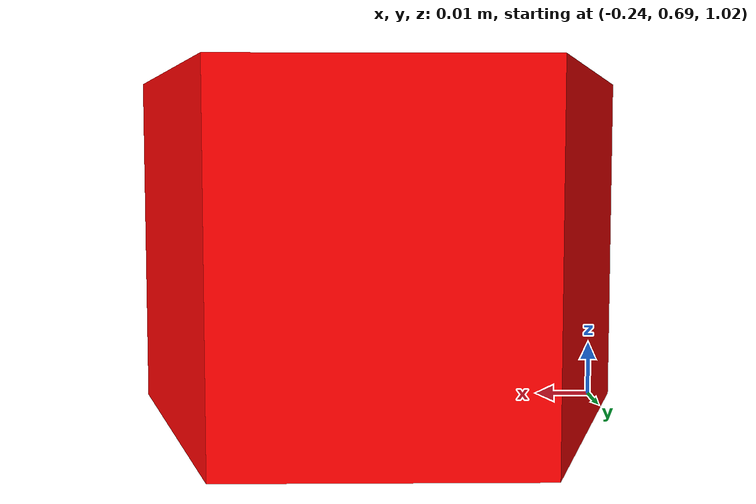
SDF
<?xml version='1.0'?>
<sdf version="1.4">
    <model name='unit_box_2'>
        <pose frame=''>-0.2 0.719858 1.05 0 -0 0</pose>
        <link name='target'>
            <inertial>
                <mass>10</mass>
                <inertia>
                    <ixx>0.166667</ixx>
                    <ixy>0</ixy>
                    <ixz>0</ixz>
                    <iyy>0.166667</iyy>
                    <iyz>0</iyz>
                    <izz>0.166667</izz>
                </inertia>
            </inertial>
            <collision name='collision'>
                <geometry>
                    <mesh>
                        <scale>0.001 0.001 0.001</scale>
                        <uri>
                            /home/robotics/catkin_ws/src/AI-robot-control/simulation/meshes/environments/collision/shape_02.stl
                        </uri>
                    </mesh>
                </geometry>
                <max_contacts>10</max_contacts>
                <surface>
                    <contact>
                        <ode/>
                    </contact>
                    <bounce/>
                    <friction>
                        <torsional>
                            <ode/>
                        </torsional>
                        <ode/>
                    </friction>
                </surface>
            </collision>
            <visual name='visual'>
                <geometry>
                    <mesh>
                        <scale>1 1 1</scale>
                        <uri>
                            /home/robotics/catkin_ws/src/AI-robot-control/simulation/meshes/environments/visual/shape_02.dae
                        </uri>
                    </mesh>
                </geometry>
            </visual>
            <self_collide>0</self_collide>
            <kinematic>0</kinematic>
            <gravity>1</gravity>
        </link>
    </model>
</sdf>
